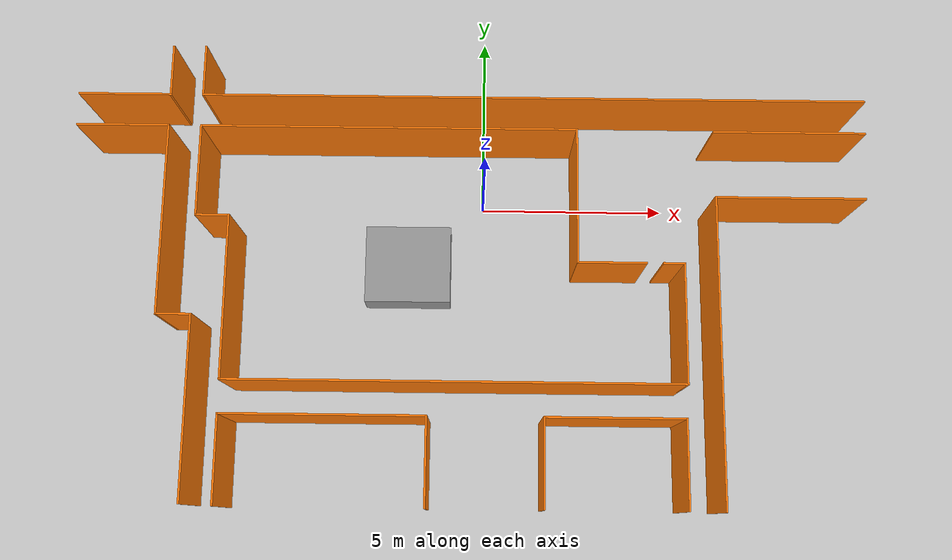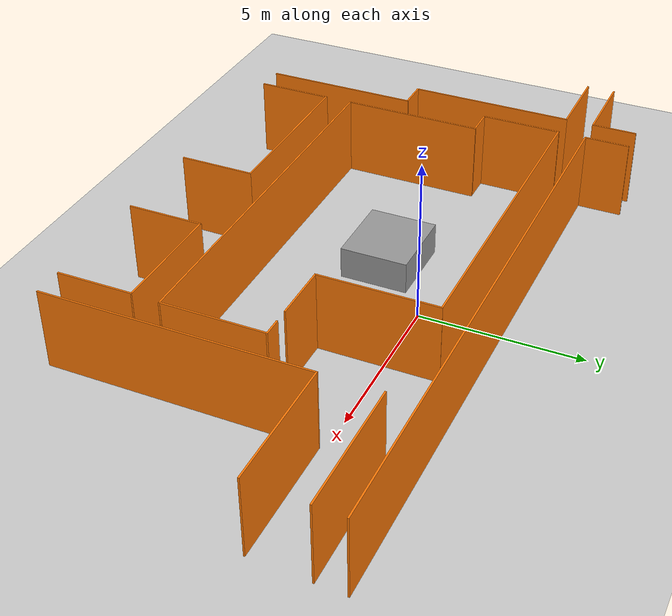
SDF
<sdf version="1.7">
 <world name="default">
  <light name="sun" type="directional">
   <pose>0 0 10 0 -0 0</pose>
   <diffuse>0.8 0.8 0.8 1</diffuse>
   <specular>0.2 0.2 0.2 1</specular>
   <attenuation>
    <range>1000</range>
    <constant>0.9</constant>
    <linear>0.01</linear>
    <quadratic>0.001</quadratic>
   </attenuation>
   <direction>-0.5 0.1 -0.9</direction>
   <spot><inner_angle>0</inner_angle><outer_angle>0</outer_angle><falloff>0</falloff></spot>
  </light>
  <model name="ground_plane">
   <static>1</static>
   <link name="link">
    <collision name="collision">
     <geometry><plane><normal>0 0 1</normal><size>100 100</size></plane></geometry>
     <surface><friction><ode><mu>100</mu><mu2>50</mu2></ode></friction></surface>
    </collision>
    <visual name="visual">
     <cast_shadows>0</cast_shadows>
     <geometry><plane><normal>0 0 1</normal><size>100 100</size></plane></geometry>
     <material>
      <script><uri>file://media/materials/scripts/gazebo.material</uri><name>Gazebo/Grey</name></script>
     </material>
    </visual>
   </link>
  </model>
  <gravity>0 0 -9.8</gravity>
  <magnetic_field>6e-06 2.3e-05 -4.2e-05</magnetic_field>
  <atmosphere type="adiabatic"/>
  <physics type="ode">
   <max_step_size>0.001</max_step_size>
   <real_time_factor>1</real_time_factor>
   <real_time_update_rate>1000</real_time_update_rate>
  </physics>
  <scene><ambient>0.4 0.4 0.4 1</ambient><background>0.7 0.7 0.7 1</background><shadows>1</shadows></scene>
  <audio><device>default</device></audio>
  <spherical_coordinates>
   <surface_model>EARTH_WGS84</surface_model>
   <latitude_deg>0</latitude_deg>
   <longitude_deg>0</longitude_deg>
   <elevation>0</elevation>
   <heading_deg>0</heading_deg>
  </spherical_coordinates>
  <model name="shiyanlou_third">
   <pose>-0.355167 -2.2278 0 0 -0 0</pose>
   <link name="Wall_110">
    <collision name="Wall_110_Collision">
     <geometry><box><size>4.08333 0.05 2.5</size></box></geometry>
     <pose>0 0 1.25 0 -0 0</pose>
    </collision>
    <visual name="Wall_110_Visual">
     <pose>0 0 1.25 0 -0 0</pose>
     <geometry><box><size>4.08333 0.05 2.5</size></box></geometry>
     <material>
      <script><uri>file://media/materials/scripts/gazebo.material</uri><name>Gazebo/Grey</name></script>
      <ambient>0.996078 0.47451 0.0196078 1</ambient>
     </material>
     <meta><layer>0</layer></meta>
    </visual>
    <pose>8.50083 3.8308 0 0 -0 0</pose>
   </link>
   <link name="Wall_116">
    <collision name="Wall_116_Collision">
     <geometry><box><size>8.16667 0.05 2.5</size></box></geometry>
     <pose>0 0 1.25 0 -0 0</pose>
    </collision>
    <visual name="Wall_116_Visual">
     <pose>0 0 1.25 0 -0 0</pose>
     <geometry><box><size>8.16667 0.05 2.5</size></box></geometry>
     <material>
      <script><uri>file://media/materials/scripts/gazebo.material</uri><name>Gazebo/Grey</name></script>
      <ambient>0.996078 0.47451 0.0196078 1</ambient>
     </material>
     <meta><layer>0</layer></meta>
    </visual>
    <pose>6.48417 -2.03687 0 0 -0 1.5708</pose>
   </link>
   <link name="Wall_118">
    <collision name="Wall_118_Collision">
     <geometry><box><size>4 0.05 2.5</size></box></geometry>
     <pose>0 0 1.25 0 -0 0</pose>
    </collision>
    <visual name="Wall_118_Visual">
     <pose>0 0 1.25 0 -0 0</pose>
     <geometry><box><size>4 0.05 2.5</size></box></geometry>
     <material>
      <script><uri>file://media/materials/scripts/gazebo.material</uri><name>Gazebo/Grey</name></script>
      <ambient>0.996078 0.47451 0.0196078 1</ambient>
     </material>
     <meta><layer>0</layer></meta>
    </visual>
    <pose>8.45917 2.02146 0 0 -0 0</pose>
   </link>
   <link name="Wall_122">
    <collision name="Wall_122_Collision">
     <geometry><box><size>2.33333 0.05 2.5</size></box></geometry>
     <pose>0 0 1.25 0 -0 0</pose>
    </collision>
    <visual name="Wall_122_Visual">
     <pose>0 0 1.25 0 -0 0</pose>
     <geometry><box><size>2.33333 0.05 2.5</size></box></geometry>
     <material>
      <script><uri>file://media/materials/scripts/gazebo.material</uri><name>Gazebo/Grey</name></script>
      <ambient>0.996078 0.47451 0.0196078 1</ambient>
     </material>
     <meta><layer>0</layer></meta>
    </visual>
    <pose>1.94383 -4.94387 0 0 -0 -1.5708</pose>
   </link>
   <link name="Wall_126">
    <collision name="Wall_126_Collision">
     <geometry><box><size>3.66667 0.05 2.5</size></box></geometry>
     <pose>0 0 1.25 0 -0 0</pose>
    </collision>
    <visual name="Wall_126_Visual">
     <pose>0 0 1.25 0 -0 0</pose>
     <geometry><box><size>3.66667 0.05 2.5</size></box></geometry>
     <material>
      <script><uri>file://media/materials/scripts/gazebo.material</uri><name>Gazebo/Grey</name></script>
      <ambient>0.996078 0.47451 0.0196078 1</ambient>
     </material>
     <meta><layer>0</layer></meta>
    </visual>
    <pose>3.75217 -3.8022 0 0 -0 0</pose>
   </link>
   <link name="Wall_130">
    <collision name="Wall_130_Collision">
     <geometry><box><size>2.33333 0.05 2.5</size></box></geometry>
     <pose>0 0 1.25 0 -0 0</pose>
    </collision>
    <visual name="Wall_130_Visual">
     <pose>0 0 1.25 0 -0 0</pose>
     <geometry><box><size>2.33333 0.05 2.5</size></box></geometry>
     <material>
      <script><uri>file://media/materials/scripts/gazebo.material</uri><name>Gazebo/Grey</name></script>
      <ambient>0.996078 0.47451 0.0196078 1</ambient>
     </material>
     <meta><layer>0</layer></meta>
    </visual>
    <pose>5.5605 -4.94387 0 0 -0 -1.5708</pose>
   </link>
   <link name="Wall_19">
    <collision name="Wall_19_Collision">
     <geometry><box><size>5.16667 0.05 2.5</size></box></geometry>
     <pose>0 0 1.25 0 -0 0</pose>
    </collision>
    <visual name="Wall_19_Visual">
     <pose>0 0 1.25 0 -0 0</pose>
     <geometry><box><size>5.16667 0.05 2.5</size></box></geometry>
     <material>
      <script><uri>file://media/materials/scripts/gazebo.material</uri><name>Gazebo/Grey</name></script>
      <ambient>0.996078 0.47451 0.0196078 1</ambient>
     </material>
     <meta><layer>0</layer></meta>
    </visual>
    <pose>-8.1035 1.29646 0 0 -0 -1.5708</pose>
   </link>
   <link name="Wall_26">
    <collision name="Wall_26_Collision">
     <geometry><box><size>1.41667 0.05 2.5</size></box></geometry>
     <pose>0 0 1.25 0 -0 0</pose>
    </collision>
    <visual name="Wall_26_Visual">
     <pose>0 0 1.25 0 -0 0</pose>
     <geometry><box><size>1.41667 0.05 2.5</size></box></geometry>
     <material>
      <script><uri>file://media/materials/scripts/gazebo.material</uri><name>Gazebo/Grey</name></script>
      <ambient>0.996078 0.47451 0.0196078 1</ambient>
     </material>
     <meta><layer>0</layer></meta>
    </visual>
    <pose>-8.1035 5.4118 0 0 -0 1.5708</pose>
   </link>
   <link name="Wall_31">
    <collision name="Wall_31_Collision">
     <geometry><box><size>1.41681 0.05 2.5</size></box></geometry>
     <pose>0 0 1.25 0 -0 0</pose>
    </collision>
    <visual name="Wall_31_Visual">
     <pose>0 0 1.25 0 -0 0</pose>
     <geometry><box><size>1.41681 0.05 2.5</size></box></geometry>
     <material>
      <script><uri>file://media/materials/scripts/gazebo.material</uri><name>Gazebo/Grey</name></script>
      <ambient>0.996078 0.47451 0.0196078 1</ambient>
     </material>
     <meta><layer>0</layer></meta>
    </visual>
    <pose>-7.22983 5.4118 0 0 -0 -1.5708</pose>
   </link>
   <link name="Wall_33">
    <collision name="Wall_33_Collision">
     <geometry><box><size>2.5 0.05 2.5</size></box></geometry>
     <pose>0 0 1.25 0 -0 0</pose>
    </collision>
    <visual name="Wall_33_Visual">
     <pose>0 0 1.25 0 -0 0</pose>
     <geometry><box><size>2.5 0.05 2.5</size></box></geometry>
     <material>
      <script><uri>file://media/materials/scripts/gazebo.material</uri><name>Gazebo/Grey</name></script>
      <ambient>0.996078 0.47451 0.0196078 1</ambient>
     </material>
     <meta><layer>0</layer></meta>
    </visual>
    <pose>-9.3285 4.72847 0 0 -0 3.14159</pose>
   </link>
   <link name="Wall_35">
    <collision name="Wall_35_Collision">
     <geometry><box><size>2.5 0.05 2.5</size></box></geometry>
     <pose>0 0 1.25 0 -0 0</pose>
    </collision>
    <visual name="Wall_35_Visual">
     <pose>0 0 1.25 0 -0 0</pose>
     <geometry><box><size>2.5 0.05 2.5</size></box></geometry>
     <material>
      <script><uri>file://media/materials/scripts/gazebo.material</uri><name>Gazebo/Grey</name></script>
      <ambient>0.996078 0.47451 0.0196078 1</ambient>
     </material>
     <meta><layer>0</layer></meta>
    </visual>
    <pose>-9.3285 3.8548 0 0 -0 3.14159</pose>
   </link>
   <link name="Wall_38">
    <collision name="Wall_38_Collision">
     <geometry><box><size>0.916667 0.05 2.5</size></box></geometry>
     <pose>0 0 1.25 0 -0 0</pose>
    </collision>
    <visual name="Wall_38_Visual">
     <pose>0 0 1.25 0 -0 0</pose>
     <geometry><box><size>0.916667 0.05 2.5</size></box></geometry>
     <material>
      <script><uri>file://media/materials/scripts/gazebo.material</uri><name>Gazebo/Grey</name></script>
      <ambient>0.996078 0.47451 0.0196078 1</ambient>
     </material>
     <meta><layer>0</layer></meta>
    </visual>
    <pose>-6.7895 1.38813 0 0 -0 0</pose>
   </link>
   <link name="Wall_42">
    <collision name="Wall_42_Collision">
     <geometry><box><size>0.959333 0.05 2.5</size></box></geometry>
     <pose>0 0 1.25 0 -0 0</pose>
    </collision>
    <visual name="Wall_42_Visual">
     <pose>0 0 1.25 0 -0 0</pose>
     <geometry><box><size>0.959333 0.05 2.5</size></box></geometry>
     <material>
      <script><uri>file://media/materials/scripts/gazebo.material</uri><name>Gazebo/Grey</name></script>
      <ambient>0.996078 0.47451 0.0196078 1</ambient>
     </material>
     <meta><layer>0</layer></meta>
    </visual>
    <pose>-7.64883 -1.26187 0 0 -0 0</pose>
   </link>
   <link name="Wall_44">
    <collision name="Wall_44_Collision">
     <geometry><box><size>4.36667 0.05 2.5</size></box></geometry>
     <pose>0 0 1.25 0 -0 0</pose>
    </collision>
    <visual name="Wall_44_Visual">
     <pose>0 0 1.25 0 -0 0</pose>
     <geometry><box><size>4.36667 0.05 2.5</size></box></geometry>
     <material>
      <script><uri>file://media/materials/scripts/gazebo.material</uri><name>Gazebo/Grey</name></script>
      <ambient>0.996078 0.47451 0.0196078 1</ambient>
     </material>
     <meta><layer>0</layer></meta>
    </visual>
    <pose>-6.35617 -0.770203 0 0 -0 -1.5708</pose>
   </link>
   <link name="Wall_48">
    <collision name="Wall_48_Collision">
     <geometry><box><size>12.0167 0.05 2.5</size></box></geometry>
     <pose>0 0 1.25 0 -0 0</pose>
    </collision>
    <visual name="Wall_48_Visual">
     <pose>0 0 1.25 0 -0 0</pose>
     <geometry><box><size>12.0167 0.05 2.5</size></box></geometry>
     <material>
      <script><uri>file://media/materials/scripts/gazebo.material</uri><name>Gazebo/Grey</name></script>
      <ambient>0.996078 0.47451 0.0196078 1</ambient>
     </material>
     <meta><layer>0</layer></meta>
    </visual>
    <pose>-0.372833 -2.92854 0 0 -0 0</pose>
   </link>
   <link name="Wall_5">
    <collision name="Wall_5_Collision">
     <geometry><box><size>17.8333 0.05 2.5</size></box></geometry>
     <pose>0 0 1.25 0 -0 0</pose>
    </collision>
    <visual name="Wall_5_Visual">
     <pose>0 0 1.25 0 -0 0</pose>
     <geometry><box><size>17.8333 0.05 2.5</size></box></geometry>
     <material>
      <script><uri>file://media/materials/scripts/gazebo.material</uri><name>Gazebo/Grey</name></script>
      <ambient>0.996078 0.47451 0.0196078 1</ambient>
     </material>
     <meta><layer>0</layer></meta>
    </visual>
    <pose>1.66183 4.72847 0 0 -0 0</pose>
   </link>
   <link name="Wall_52">
    <collision name="Wall_52_Collision">
     <geometry><box><size>5.35 0.05 2.5</size></box></geometry>
     <pose>0 0 1.25 0 -0 0</pose>
    </collision>
    <visual name="Wall_52_Visual">
     <pose>0 0 1.25 0 -0 0</pose>
     <geometry><box><size>5.35 0.05 2.5</size></box></geometry>
     <material>
      <script><uri>file://media/materials/scripts/gazebo.material</uri><name>Gazebo/Grey</name></script>
      <ambient>0.996078 0.47451 0.0196078 1</ambient>
     </material>
     <meta><layer>0</layer></meta>
    </visual>
    <pose>-3.70617 -3.8022 0 0 -0 0</pose>
   </link>
   <link name="Wall_54">
    <collision name="Wall_54_Collision">
     <geometry><box><size>2.33333 0.05 2.5</size></box></geometry>
     <pose>0 0 1.25 0 -0 0</pose>
    </collision>
    <visual name="Wall_54_Visual">
     <pose>0 0 1.25 0 -0 0</pose>
     <geometry><box><size>2.33333 0.05 2.5</size></box></geometry>
     <material>
      <script><uri>file://media/materials/scripts/gazebo.material</uri><name>Gazebo/Grey</name></script>
      <ambient>0.996078 0.47451 0.0196078 1</ambient>
     </material>
     <meta><layer>0</layer></meta>
    </visual>
    <pose>-6.35617 -4.94387 0 0 -0 -1.5708</pose>
   </link>
   <link name="Wall_60">
    <collision name="Wall_60_Collision">
     <geometry><box><size>4.83333 0.05 2.5</size></box></geometry>
     <pose>0 0 1.25 0 -0 0</pose>
    </collision>
    <visual name="Wall_60_Visual">
     <pose>0 0 1.25 0 -0 0</pose>
     <geometry><box><size>4.83333 0.05 2.5</size></box></geometry>
     <material>
      <script><uri>file://media/materials/scripts/gazebo.material</uri><name>Gazebo/Grey</name></script>
      <ambient>0.996078 0.47451 0.0196078 1</ambient>
     </material>
     <meta><layer>0</layer></meta>
    </visual>
    <pose>-7.19417 -3.65353 0 0 -0 -1.5708</pose>
   </link>
   <link name="Wall_62">
    <collision name="Wall_62_Collision">
     <geometry><box><size>2.33333 0.05 2.5</size></box></geometry>
     <pose>0 0 1.25 0 -0 0</pose>
    </collision>
    <visual name="Wall_62_Visual">
     <pose>0 0 1.25 0 -0 0</pose>
     <geometry><box><size>2.33333 0.05 2.5</size></box></geometry>
     <material>
      <script><uri>file://media/materials/scripts/gazebo.material</uri><name>Gazebo/Grey</name></script>
      <ambient>0.996078 0.47451 0.0196078 1</ambient>
     </material>
     <meta><layer>0</layer></meta>
    </visual>
    <pose>-1.05617 -4.94387 0 0 -0 -1.5708</pose>
   </link>
   <link name="Wall_70">
    <collision name="Wall_70_Collision">
     <geometry><box><size>3.2 0.05 2.5</size></box></geometry>
     <pose>0 0 1.25 0 -0 0</pose>
    </collision>
    <visual name="Wall_70_Visual">
     <pose>0 0 1.25 0 -0 0</pose>
     <geometry><box><size>3.2 0.05 2.5</size></box></geometry>
     <material>
      <script><uri>file://media/materials/scripts/gazebo.material</uri><name>Gazebo/Grey</name></script>
      <ambient>0.996078 0.47451 0.0196078 1</ambient>
     </material>
     <meta><layer>0</layer></meta>
    </visual>
    <pose>5.6105 -1.35354 0 0 -0 1.5708</pose>
   </link>
   <link name="Wall_72">
    <collision name="Wall_72_Collision">
     <geometry><box><size>0.583333 0.05 2.5</size></box></geometry>
     <pose>0 0 1.25 0 -0 0</pose>
    </collision>
    <visual name="Wall_72_Visual">
     <pose>0 0 1.25 0 -0 0</pose>
     <geometry><box><size>0.583333 0.05 2.5</size></box></geometry>
     <material>
      <script><uri>file://media/materials/scripts/gazebo.material</uri><name>Gazebo/Grey</name></script>
      <ambient>0.996078 0.47451 0.0196078 1</ambient>
     </material>
     <meta><layer>0</layer></meta>
    </visual>
    <pose>5.34383 0.221463 0 0 -0 3.14159</pose>
   </link>
   <link name="Wall_81">
    <collision name="Wall_81_Collision">
     <geometry><box><size>1.83333 0.05 2.5</size></box></geometry>
     <pose>0 0 1.25 0 -0 0</pose>
    </collision>
    <visual name="Wall_81_Visual">
     <pose>0 0 1.25 0 -0 0</pose>
     <geometry><box><size>1.83333 0.05 2.5</size></box></geometry>
     <material>
      <script><uri>file://media/materials/scripts/gazebo.material</uri><name>Gazebo/Grey</name></script>
      <ambient>0.996078 0.47451 0.0196078 1</ambient>
     </material>
     <meta><layer>0</layer></meta>
    </visual>
    <pose>3.72217 0.221463 0 0 -0 3.14159</pose>
   </link>
   <link name="Wall_83">
    <collision name="Wall_83_Collision">
     <geometry><box><size>3.66667 0.05 2.5</size></box></geometry>
     <pose>0 0 1.25 0 -0 0</pose>
    </collision>
    <visual name="Wall_83_Visual">
     <pose>0 0 1.25 0 -0 0</pose>
     <geometry><box><size>3.66667 0.05 2.5</size></box></geometry>
     <material>
      <script><uri>file://media/materials/scripts/gazebo.material</uri><name>Gazebo/Grey</name></script>
      <ambient>0.996078 0.47451 0.0196078 1</ambient>
     </material>
     <meta><layer>0</layer></meta>
    </visual>
    <pose>2.8275 2.04646 0 0 -0 -1.5708</pose>
   </link>
   <link name="Wall_87">
    <collision name="Wall_87_Collision">
     <geometry><box><size>2.50004 0.05 2.5</size></box></geometry>
     <pose>0 0 1.25 0 -0 0</pose>
    </collision>
    <visual name="Wall_87_Visual">
     <pose>0 0 1.25 0 -0 0</pose>
     <geometry><box><size>2.50004 0.05 2.5</size></box></geometry>
     <material>
      <script><uri>file://media/materials/scripts/gazebo.material</uri><name>Gazebo/Grey</name></script>
      <ambient>0.996078 0.47451 0.0196078 1</ambient>
     </material>
     <meta><layer>0</layer></meta>
    </visual>
    <pose>-7.22983 2.6298 0 0 -0 -1.5708</pose>
   </link>
   <link name="Wall_91">
    <collision name="Wall_91_Collision">
     <geometry><box><size>10.0988 0.05 2.5</size></box></geometry>
     <pose>0 0 1.25 0 -0 0</pose>
    </collision>
    <visual name="Wall_91_Visual">
     <pose>0 0 1.25 0 -0 0</pose>
     <geometry><box><size>10.0988 0.05 2.5</size></box></geometry>
     <material>
      <script><uri>file://media/materials/scripts/gazebo.material</uri><name>Gazebo/Grey</name></script>
      <ambient>0.996078 0.47451 0.0196078 1</ambient>
     </material>
     <meta><layer>0</layer></meta>
    </visual>
    <pose>-2.20541 3.8548 0 0 -0 0</pose>
   </link>
   <static>1</static>
  </model>
  <model name="unit_box">
   <pose>-2.04714 -1.78273 0.49998 -1.9e-05 -0 -1e-06</pose>
   <link name="link">
    <inertial>
     <mass>1</mass>
     <inertia>
      <ixx>0.166667</ixx>
      <ixy>0</ixy>
      <ixz>0</ixz>
      <iyy>0.166667</iyy>
      <iyz>0</iyz>
      <izz>0.166667</izz>
     </inertia>
    </inertial>
    <collision name="collision"><geometry><box><size>2.32178 2.08926 1</size></box></geometry></collision>
    <visual name="visual">
     <geometry><box><size>2.32178 2.08926 1</size></box></geometry>
     <material>
      <script><name>Gazebo/Grey</name><uri>file://media/materials/scripts/gazebo.material</uri></script>
     </material>
    </visual>
   </link>
  </model>
 </world>
</sdf>
